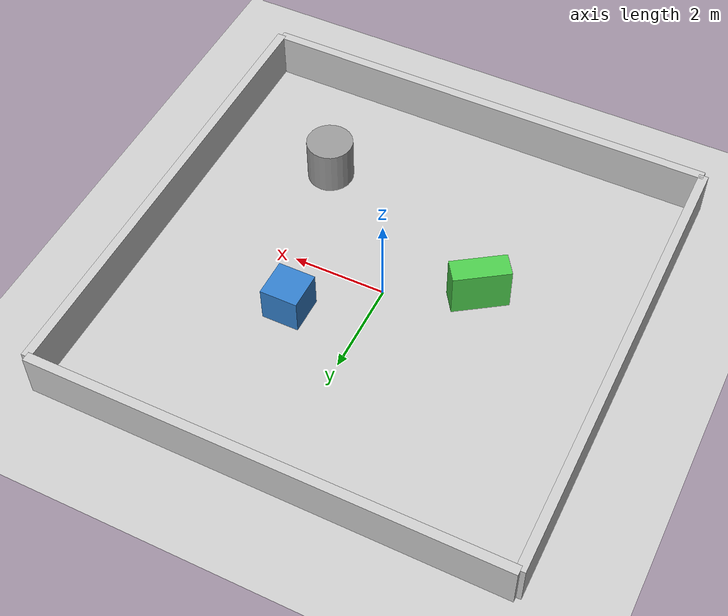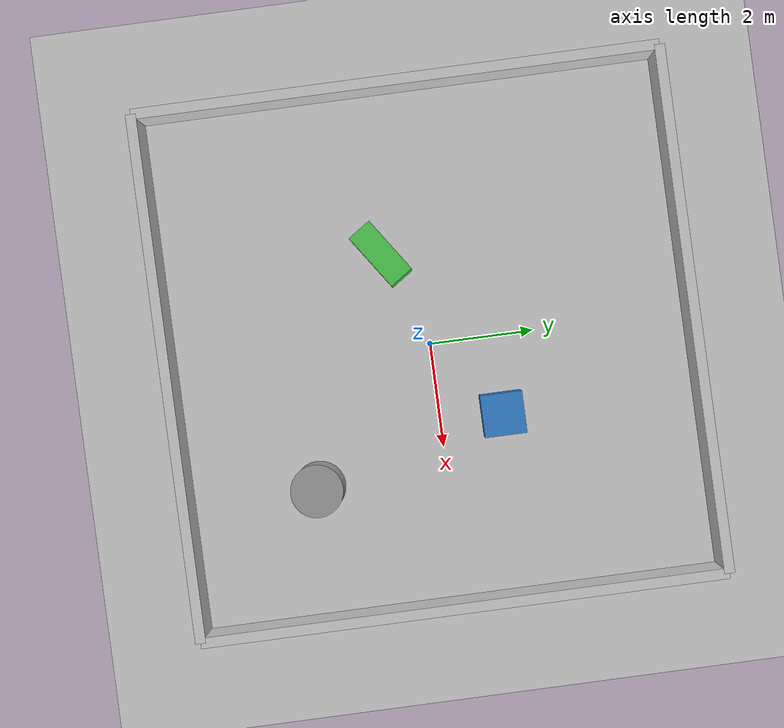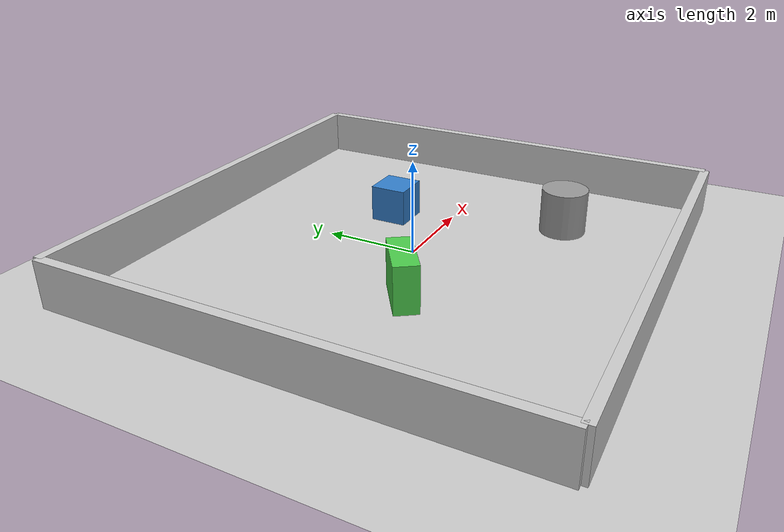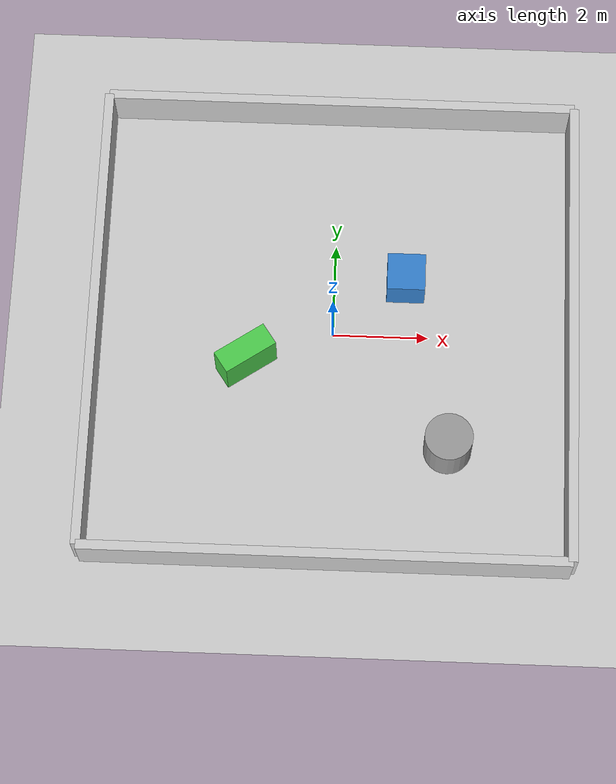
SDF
<sdf version="1.7">
 <world name="office_map_world">
  <light name="sun" type="directional">
   <pose>0 0 10 0 -0 0</pose>
   <diffuse>0.8 0.8 0.8 1</diffuse>
   <specular>0.2 0.2 0.2 1</specular>
   <attenuation>
    <range>1000</range>
    <constant>0.9</constant>
    <linear>0.01</linear>
    <quadratic>0.001</quadratic>
   </attenuation>
   <direction>-0.5 0.1 -0.9</direction>
   <spot><inner_angle>0</inner_angle><outer_angle>0</outer_angle><falloff>0</falloff></spot>
  </light>
  <model name="ground_plane">
   <static>1</static>
   <link name="link">
    <collision name="collision">
     <geometry><plane><normal>0 0 1</normal><size>100 100</size></plane></geometry>
     <surface><friction><ode><mu>100</mu><mu2>50</mu2></ode></friction></surface>
    </collision>
    <visual name="visual">
     <cast_shadows>0</cast_shadows>
     <geometry><plane><normal>0 0 1</normal><size>100 100</size></plane></geometry>
     <material>
      <script><uri>file://media/materials/scripts/gazebo.material</uri><name>Gazebo/Grey</name></script>
     </material>
    </visual>
   </link>
  </model>
  <model name="wall_north">
   <static>1</static>
   <pose>0 5 0.5 0 -0 0</pose>
   <link name="link">
    <collision name="collision"><geometry><box><size>10 0.2 1</size></box></geometry></collision>
    <visual name="visual">
     <geometry><box><size>10 0.2 1</size></box></geometry>
     <material><ambient>0.8 0.8 0.8 1</ambient><diffuse>0.8 0.8 0.8 1</diffuse></material>
    </visual>
   </link>
  </model>
  <model name="wall_south">
   <static>1</static>
   <pose>0 -5 0.5 0 -0 0</pose>
   <link name="link">
    <collision name="collision"><geometry><box><size>10 0.2 1</size></box></geometry></collision>
    <visual name="visual">
     <geometry><box><size>10 0.2 1</size></box></geometry>
     <material><ambient>0.8 0.8 0.8 1</ambient><diffuse>0.8 0.8 0.8 1</diffuse></material>
    </visual>
   </link>
  </model>
  <model name="wall_east">
   <static>1</static>
   <pose>5 0 0.5 0 -0 1.5708</pose>
   <link name="link">
    <collision name="collision"><geometry><box><size>10 0.2 1</size></box></geometry></collision>
    <visual name="visual">
     <geometry><box><size>10 0.2 1</size></box></geometry>
     <material><ambient>0.8 0.8 0.8 1</ambient><diffuse>0.8 0.8 0.8 1</diffuse></material>
    </visual>
   </link>
  </model>
  <model name="wall_west">
   <static>1</static>
   <pose>-5 0 0.5 0 -0 1.5708</pose>
   <link name="link">
    <collision name="collision"><geometry><box><size>10 0.2 1</size></box></geometry></collision>
    <visual name="visual">
     <geometry><box><size>10 0.2 1</size></box></geometry>
     <material><ambient>0.8 0.8 0.8 1</ambient><diffuse>0.8 0.8 0.8 1</diffuse></material>
    </visual>
   </link>
  </model>
  <model name="obstacle_box_1">
   <static>1</static>
   <pose>1.5 1.2 0.4 0 -0 0</pose>
   <link name="link">
    <collision name="collision"><geometry><box><size>0.8 0.8 0.8</size></box></geometry></collision>
    <visual name="visual">
     <geometry><box><size>0.8 0.8 0.8</size></box></geometry>
     <material><ambient>0.2 0.5 0.8 1</ambient><diffuse>0.2 0.5 0.8 1</diffuse></material>
    </visual>
   </link>
  </model>
  <model name="obstacle_box_2">
   <static>1</static>
   <pose>-1.8 -0.7 0.5 0 -0 0.6</pose>
   <link name="link">
    <collision name="collision"><geometry><box><size>1.2 0.5 1</size></box></geometry></collision>
    <visual name="visual">
     <geometry><box><size>1.2 0.5 1</size></box></geometry>
     <material><ambient>0.3 0.8 0.3 1</ambient><diffuse>0.3 0.8 0.3 1</diffuse></material>
    </visual>
   </link>
  </model>
  <gravity>0 0 -9.8</gravity>
  <magnetic_field>6e-06 2.3e-05 -4.2e-05</magnetic_field>
  <atmosphere type="adiabatic"/>
  <physics type="ode">
   <max_step_size>0.001</max_step_size>
   <real_time_factor>1</real_time_factor>
   <real_time_update_rate>1000</real_time_update_rate>
  </physics>
  <scene><ambient>0.4 0.4 0.4 1</ambient><background>0.7 0.7 0.7 1</background><shadows>1</shadows></scene>
  <audio><device>default</device></audio>
  <spherical_coordinates>
   <surface_model>EARTH_WGS84</surface_model>
   <latitude_deg>0</latitude_deg>
   <longitude_deg>0</longitude_deg>
   <elevation>0</elevation>
   <heading_deg>0</heading_deg>
  </spherical_coordinates>
  <model name="unit_cylinder">
   <pose>2.4602 -2.46507 0.499997 3e-06 4e-06 -0</pose>
   <link name="link">
    <inertial>
     <mass>1</mass>
     <inertia><ixx>0.145833</ixx><ixy>0</ixy><ixz>0</ixz><iyy>0.145833</iyy><iyz>0</iyz><izz>0.125</izz></inertia>
    </inertial>
    <collision name="collision">
     <geometry><cylinder><radius>0.5</radius><length>1</length></cylinder></geometry>
    </collision>
    <visual name="visual">
     <geometry><cylinder><radius>0.5</radius><length>1</length></cylinder></geometry>
     <material>
      <script><name>Gazebo/Grey</name><uri>file://media/materials/scripts/gazebo.material</uri></script>
     </material>
    </visual>
   </link>
  </model>
 </world>
</sdf>
